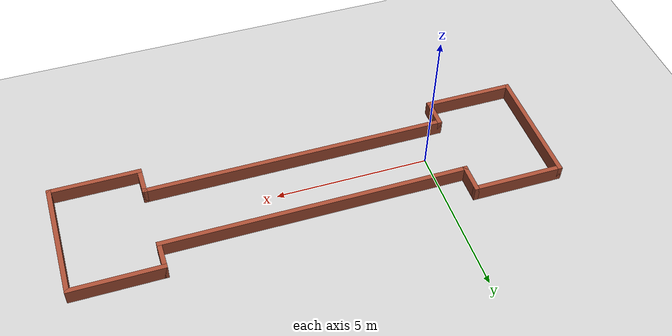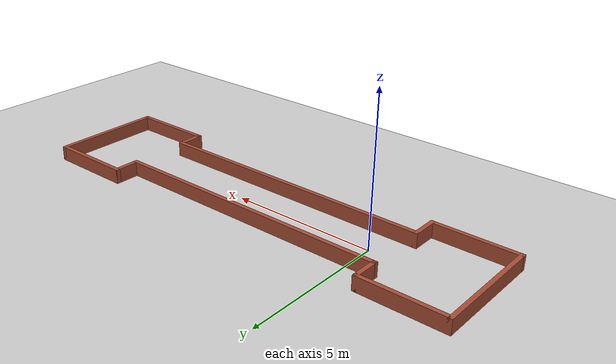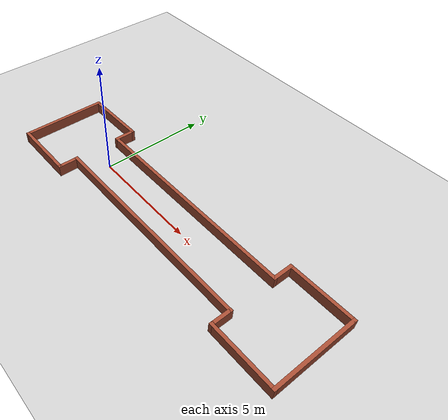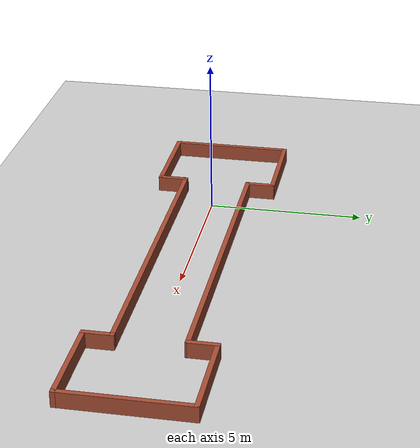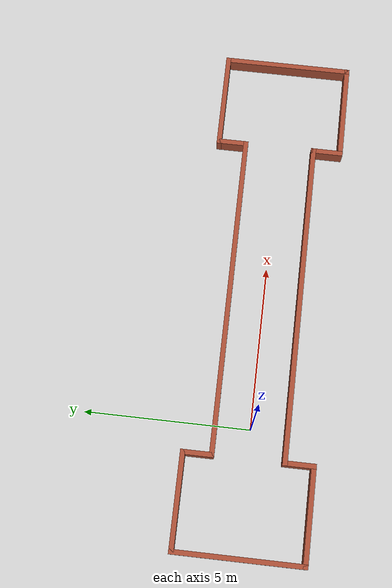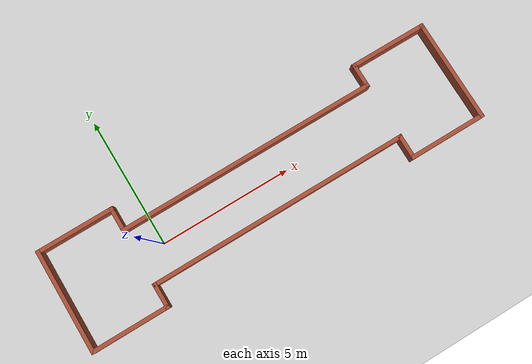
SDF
<sdf version="1.7">
 <world name="default">
  <light name="sun" type="directional">
   <pose>0 0 10 0 -0 0</pose>
   <diffuse>0.8 0.8 0.8 1</diffuse>
   <specular>0.2 0.2 0.2 1</specular>
   <attenuation>
    <range>1000</range>
    <constant>0.9</constant>
    <linear>0.01</linear>
    <quadratic>0.001</quadratic>
   </attenuation>
   <direction>-0.5 0.1 -0.9</direction>
   <spot><inner_angle>0</inner_angle><outer_angle>0</outer_angle><falloff>0</falloff></spot>
  </light>
  <model name="ground_plane">
   <static>1</static>
   <link name="link">
    <collision name="collision">
     <geometry><plane><normal>0 0 1</normal><size>100 100</size></plane></geometry>
     <surface>
      <contact><collide_bitmask>65535</collide_bitmask></contact>
      <friction><ode><mu>100</mu><mu2>50</mu2></ode></friction>
     </surface>
    </collision>
    <visual name="visual">
     <cast_shadows>0</cast_shadows>
     <geometry><plane><normal>0 0 1</normal><size>100 100</size></plane></geometry>
     <material>
      <script><uri>file://media/materials/scripts/gazebo.material</uri><name>Gazebo/Grey</name></script>
     </material>
    </visual>
   </link>
  </model>
  <gravity>0 0 -9.8</gravity>
  <magnetic_field>6e-06 2.3e-05 -4.2e-05</magnetic_field>
  <atmosphere type="adiabatic"/>
  <physics type="ode">
   <max_step_size>0.001</max_step_size>
   <real_time_factor>1</real_time_factor>
   <real_time_update_rate>1000</real_time_update_rate>
  </physics>
  <scene><ambient>0.4 0.4 0.4 1</ambient><background>0.7 0.7 0.7 1</background><shadows>1</shadows></scene>
  <spherical_coordinates>
   <surface_model>EARTH_WGS84</surface_model>
   <latitude_deg>0</latitude_deg>
   <longitude_deg>0</longitude_deg>
   <elevation>0</elevation>
   <heading_deg>0</heading_deg>
  </spherical_coordinates>
  <model name="corridor">
   <pose>4.02584 0.5437 0 0 -0 0</pose>
   <link name="Wall_15">
    <collision name="Wall_15_Collision">
     <geometry><box><size>1 0.15 0.5</size></box></geometry>
     <pose>0 0 0.25 0 -0 0</pose>
    </collision>
    <visual name="Wall_15_Visual">
     <pose>0 0 0.25 0 -0 0</pose>
     <geometry><box><size>1 0.15 0.5</size></box></geometry>
     <material>
      <script><uri>file://media/materials/scripts/gazebo.material</uri><name>Gazebo/Bricks</name></script>
      <ambient>1 1 1 1</ambient>
     </material>
     <meta><layer>0</layer></meta>
    </visual>
    <pose>4.925 0.9475 0 0 -0 -1.5708</pose>
   </link>
   <link name="Wall_16">
    <collision name="Wall_16_Collision">
     <geometry><box><size>10 0.15 0.5</size></box></geometry>
     <pose>0 0 0.25 0 -0 0</pose>
    </collision>
    <visual name="Wall_16_Visual">
     <pose>0 0 0.25 0 -0 0</pose>
     <geometry><box><size>10 0.15 0.5</size></box></geometry>
     <material>
      <script><uri>file://media/materials/scripts/gazebo.material</uri><name>Gazebo/Bricks</name></script>
      <ambient>1 1 1 1</ambient>
     </material>
     <meta><layer>0</layer></meta>
    </visual>
    <pose>-0 0.5225 0 0 -0 3.14159</pose>
   </link>
   <link name="Wall_17">
    <collision name="Wall_17_Collision">
     <geometry><box><size>1 0.15 0.5</size></box></geometry>
     <pose>0 0 0.25 0 -0 0</pose>
    </collision>
    <visual name="Wall_17_Visual">
     <pose>0 0 0.25 0 -0 0</pose>
     <geometry><box><size>1 0.15 0.5</size></box></geometry>
     <material>
      <script><uri>file://media/materials/scripts/gazebo.material</uri><name>Gazebo/Bricks</name></script>
      <ambient>1 1 1 1</ambient>
     </material>
     <meta><layer>0</layer></meta>
    </visual>
    <pose>-4.925 0.9475 0 0 -0 1.5708</pose>
   </link>
   <link name="Wall_2">
    <collision name="Wall_2_Collision">
     <geometry><box><size>1 0.15 0.5</size></box></geometry>
     <pose>0 0 0.25 0 -0 0</pose>
    </collision>
    <visual name="Wall_2_Visual">
     <pose>0 0 0.25 0 -0 0</pose>
     <geometry><box><size>1 0.15 0.5</size></box></geometry>
     <material>
      <script><uri>file://media/materials/scripts/gazebo.material</uri><name>Gazebo/Bricks</name></script>
      <ambient>1 1 1 1</ambient>
     </material>
     <meta><layer>0</layer></meta>
    </visual>
    <pose>-4.925 -2.0525 0 0 -0 1.5708</pose>
   </link>
   <link name="Wall_21">
    <collision name="Wall_21_Collision">
     <geometry><box><size>3 0.15 0.5</size></box></geometry>
     <pose>0 0 0.25 0 -0 0</pose>
    </collision>
    <visual name="Wall_21_Visual">
     <pose>0 0 0.25 0 -0 0</pose>
     <geometry><box><size>3 0.15 0.5</size></box></geometry>
     <material>
      <script><uri>file://media/materials/scripts/gazebo.material</uri><name>Gazebo/Bricks</name></script>
      <ambient>1 1 1 1</ambient>
     </material>
     <meta><layer>0</layer></meta>
    </visual>
    <pose>-6.35 -2.4775 0 0 -0 3.14159</pose>
   </link>
   <link name="Wall_22">
    <collision name="Wall_22_Collision">
     <geometry><box><size>4 0.15 0.5</size></box></geometry>
     <pose>0 0 0.25 0 -0 0</pose>
    </collision>
    <visual name="Wall_22_Visual">
     <pose>0 0 0.25 0 -0 0</pose>
     <geometry><box><size>4 0.15 0.5</size></box></geometry>
     <material>
      <script><uri>file://media/materials/scripts/gazebo.material</uri><name>Gazebo/Bricks</name></script>
      <ambient>1 1 1 1</ambient>
     </material>
     <meta><layer>0</layer></meta>
    </visual>
    <pose>-7.775 -0.5525 0 0 -0 1.5708</pose>
   </link>
   <link name="Wall_23">
    <collision name="Wall_23_Collision">
     <geometry><box><size>3 0.15 0.5</size></box></geometry>
     <pose>0 0 0.25 0 -0 0</pose>
    </collision>
    <visual name="Wall_23_Visual">
     <pose>0 0 0.25 0 -0 0</pose>
     <geometry><box><size>3 0.15 0.5</size></box></geometry>
     <material>
      <script><uri>file://media/materials/scripts/gazebo.material</uri><name>Gazebo/Bricks</name></script>
      <ambient>1 1 1 1</ambient>
     </material>
     <meta><layer>0</layer></meta>
    </visual>
    <pose>-6.35 1.3725 0 0 -0 0</pose>
   </link>
   <link name="Wall_28">
    <collision name="Wall_28_Collision">
     <geometry><box><size>3 0.15 0.5</size></box></geometry>
     <pose>0 0 0.25 0 -0 0</pose>
    </collision>
    <visual name="Wall_28_Visual">
     <pose>0 0 0.25 0 -0 0</pose>
     <geometry><box><size>3 0.15 0.5</size></box></geometry>
     <material>
      <script><uri>file://media/materials/scripts/gazebo.material</uri><name>Gazebo/Bricks</name></script>
      <ambient>1 1 1 1</ambient>
     </material>
     <meta><layer>0</layer></meta>
    </visual>
    <pose>6.35 1.3725 0 0 -0 0</pose>
   </link>
   <link name="Wall_29">
    <collision name="Wall_29_Collision">
     <geometry><box><size>3.99 0.15 0.5</size></box></geometry>
     <pose>0 0 0.25 0 -0 0</pose>
    </collision>
    <visual name="Wall_29_Visual">
     <pose>0 0 0.25 0 -0 0</pose>
     <geometry><box><size>3.99 0.15 0.5</size></box></geometry>
     <material>
      <script><uri>file://media/materials/scripts/gazebo.material</uri><name>Gazebo/Bricks</name></script>
      <ambient>1 1 1 1</ambient>
     </material>
     <meta><layer>0</layer></meta>
    </visual>
    <pose>7.775 -0.5475 0 0 -0 -1.5708</pose>
   </link>
   <link name="Wall_30">
    <collision name="Wall_30_Collision">
     <geometry><box><size>3 0.15 0.5</size></box></geometry>
     <pose>0 0 0.25 0 -0 0</pose>
    </collision>
    <visual name="Wall_30_Visual">
     <pose>0 0 0.25 0 -0 0</pose>
     <geometry><box><size>3 0.15 0.5</size></box></geometry>
     <material>
      <script><uri>file://media/materials/scripts/gazebo.material</uri><name>Gazebo/Bricks</name></script>
      <ambient>1 1 1 1</ambient>
     </material>
     <meta><layer>0</layer></meta>
    </visual>
    <pose>6.35 -2.4675 0 0 -0 3.14159</pose>
   </link>
   <link name="Wall_7">
    <collision name="Wall_7_Collision">
     <geometry><box><size>10 0.15 0.5</size></box></geometry>
     <pose>0 0 0.25 0 -0 0</pose>
    </collision>
    <visual name="Wall_7_Visual">
     <pose>0 0 0.25 0 -0 0</pose>
     <geometry><box><size>10 0.15 0.5</size></box></geometry>
     <material>
      <script><uri>file://media/materials/scripts/gazebo.material</uri><name>Gazebo/Bricks</name></script>
      <ambient>1 1 1 1</ambient>
     </material>
     <meta><layer>0</layer></meta>
    </visual>
    <pose>-0 -1.6275 0 0 -0 0</pose>
   </link>
   <link name="Wall_8">
    <collision name="Wall_8_Collision">
     <geometry><box><size>0.99 0.15 0.5</size></box></geometry>
     <pose>0 0 0.25 0 -0 0</pose>
    </collision>
    <visual name="Wall_8_Visual">
     <pose>0 0 0.25 0 -0 0</pose>
     <geometry><box><size>0.99 0.15 0.5</size></box></geometry>
     <material>
      <script><uri>file://media/materials/scripts/gazebo.material</uri><name>Gazebo/Bricks</name></script>
      <ambient>1 1 1 1</ambient>
     </material>
     <meta><layer>0</layer></meta>
    </visual>
    <pose>4.925 -2.0475 0 0 -0 -1.5708</pose>
   </link>
   <static>1</static>
  </model>
 </world>
</sdf>
